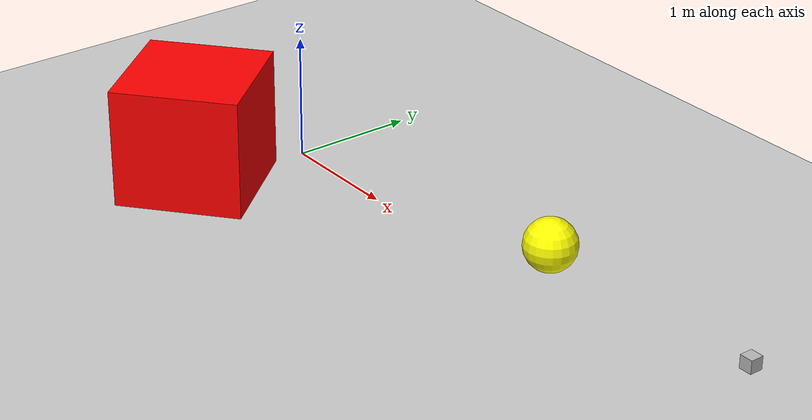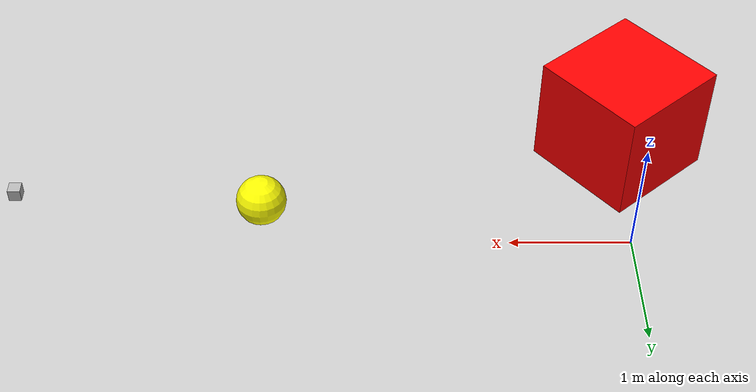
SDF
<sdf version="1.6">
 <world name="ros_gz">
  <physics name="1ms" type="ode">
   <max_step_size>0.001</max_step_size>
   <real_time_factor>1.0</real_time_factor>
  </physics>
  <plugin filename="ignition-gazebo-physics-system" name="ignition::gazebo::systems::Physics"/>
  <plugin filename="ignition-gazebo-sensors-system" name="ignition::gazebo::systems::Sensors">
   <render_engine>ogre2</render_engine>
  </plugin>
  <plugin filename="ignition-gazebo-scene-broadcaster-system" name="ignition::gazebo::systems::SceneBroadcaster"/>
  <light type="directional" name="sun">
   <pose>0 0 10 0 0 0</pose>
   <diffuse>0.8 0.8 0.8 1</diffuse>
   <specular>0.2 0.2 0.2 1</specular>
   <attenuation>
    <range>1000</range>
    <constant>0.9</constant>
    <linear>0.01</linear>
    <quadratic>0.001</quadratic>
   </attenuation>
   <direction>-0.5 0.1 -0.9</direction>
  </light>
  <model name="ground_plane">
   <static>true</static>
   <link name="link">
    <collision name="collision"><geometry><box><size>20 20 0.1</size></box></geometry></collision>
    <visual name="visual">
     <geometry><box><size>20 20 0.1</size></box></geometry>
     <material>
      <ambient>0.8 0.8 0.8 1</ambient>
      <diffuse>0.8 0.8 0.8 1</diffuse>
      <specular>0.8 0.8 0.8 1</specular>
     </material>
    </visual>
   </link>
  </model>
  <model name="box">
   <pose>0 -1 0.5 0 0 0.7</pose>
   <link name="link">
    <inertial>
     <inertia><ixx>1</ixx><ixy>0</ixy><ixz>0</ixz><iyy>1</iyy><iyz>0</iyz><izz>1</izz></inertia>
     <mass>1.0</mass>
    </inertial>
    <collision name="collision"><geometry><box><size>1 1 1</size></box></geometry></collision>
    <visual name="visual">
     <geometry><box><size>1 1 1</size></box></geometry>
     <material><ambient>1 0 0 1</ambient><diffuse>1 0 0 1</diffuse><specular>1 0 0 1</specular></material>
    </visual>
   </link>
  </model>
  <model name="sphere">
   <pose>3 0 0.5 0 0 0</pose>
   <link name="link">
    <inertial>
     <inertia><ixx>1</ixx><ixy>0</ixy><ixz>0</ixz><iyy>1</iyy><iyz>0</iyz><izz>1</izz></inertia>
     <mass>1.0</mass>
    </inertial>
    <collision name="collision"><geometry><sphere><radius>0.2</radius></sphere></geometry></collision>
    <visual name="visual">
     <geometry><sphere><radius>0.2</radius></sphere></geometry>
     <material><ambient>1 1 0 1</ambient><diffuse>1 1 0 1</diffuse><specular>1 1 0 1</specular></material>
    </visual>
   </link>
  </model>
  <model name="custom_params">
   <pose>5 0 0.5 0 0.0 3.14</pose>
   <link name="link">
    <pose>0.05 0.05 0.05 0 0 0</pose>
    <inertial>
     <mass>0.1</mass>
     <inertia><ixx>0.000166667</ixx><iyy>0.000166667</iyy><izz>0.000166667</izz></inertia>
    </inertial>
    <collision name="collision"><geometry><box><size>0.1 0.1 0.1</size></box></geometry></collision>
    <visual name="visual"><geometry><box><size>0.1 0.1 0.1</size></box></geometry></visual>
    <sensor name="gpu_lidar" type="gpu_lidar">
     <topic>lidar</topic>
     <update_rate>10</update_rate>
     <lidar>
      <scan>
       <horizontal>
        <samples>640</samples>
        <resolution>1</resolution>
        <min_angle>-1.396263</min_angle>
        <max_angle>1.396263</max_angle>
       </horizontal>
       <vertical>
        <samples>16</samples>
        <resolution>1</resolution>
        <min_angle>-0.261799</min_angle>
        <max_angle>0.261799</max_angle>
       </vertical>
      </scan>
      <range><min>0.08</min><max>10.0</max><resolution>0.01</resolution></range>
      <ray><time_stamp_fields>true</time_stamp_fields></ray>
     </lidar>
     <alwaysOn>1</alwaysOn>
     <visualize>true</visualize>
     <plugin filename="RosGzPointCloud" name="ros_gz_point_cloud::PointCloud">
      <namespace>custom_params</namespace>
      <topic>pc2</topic>
      <frame_id>custom_params/link</frame_id>
      <point_time_field>true</point_time_field>
     </plugin>
    </sensor>
   </link>
  </model>
 </world>
</sdf>
